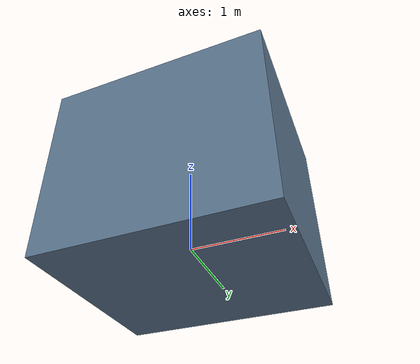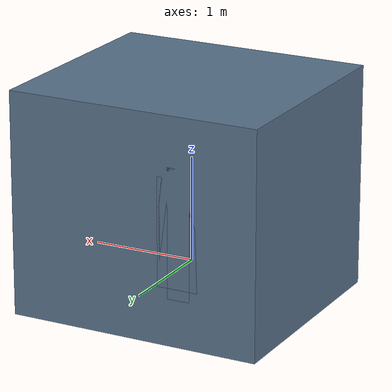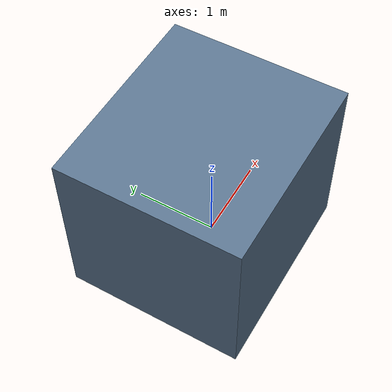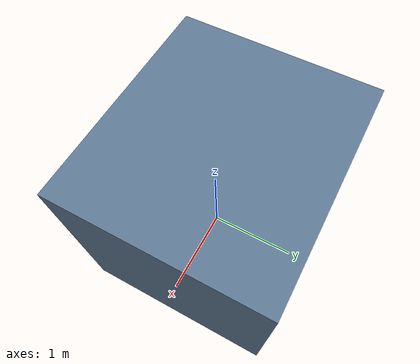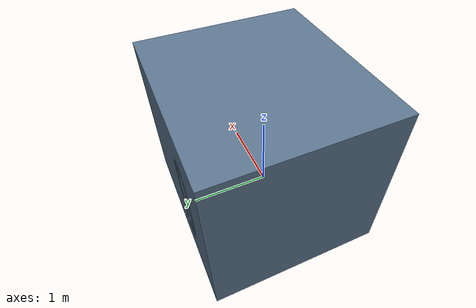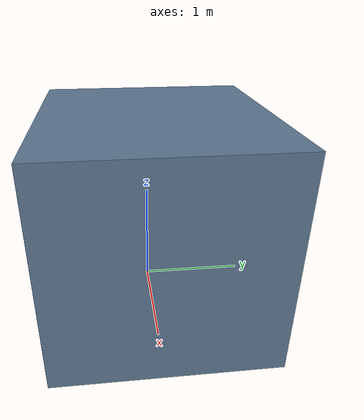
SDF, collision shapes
<?xml version="1.0"?>
<sdf version="1.6">
  <model name="airport_container_measured">
    <static>true</static>
    <link name="container_link">
      <pose>0 0 0 0 0 0</pose>
      <visual name="visual">
        <geometry>
          <mesh>
            <uri>model://airport_container_measured/meshes/container_visual.stl</uri>
            <scale>1 1 1</scale>
          </mesh>
        </geometry>
        <material>
          <ambient>0.25 0.35 0.45 1</ambient>
          <diffuse>0.35 0.45 0.55 1</diffuse>
        </material>
      </visual>
      <collision name="collision_0_body_main">
        <pose>-0.016949991505991857 0.08259390630376129 0.7202500000000001 0 0 0</pose>
        <geometry><box><size>2.432714285714286 2.1870000000000003 2.1245000000000003</size></box></geometry>
      </collision>
      <collision name="collision_1_lintel">
        <pose>-0.4851984387109607 1.1460939063037614 1.267217391304348 0 0 0</pose>
        <geometry><box><size>0.215695652173913 0.06 0.1</size></box></geometry>
      </collision>
      <collision name="collision_2_sill">
        <pose>-0.4851984387109607 1.1460939063037614 0.1537826086956522 0 0 0</pose>
        <geometry><box><size>0.215695652173913 0.06 0.1</size></box></geometry>
      </collision>
      <collision name="collision_3_left_pillar">
        <pose>-0.6430462647979173 1.1460939063037614 0.7105000000000001 0 0 0</pose>
        <geometry><box><size>0.1 0.06 1.0134347826086958</size></box></geometry>
      </collision>
      <collision name="collision_4_right_pillar">
        <pose>-0.3273506126240042 1.1460939063037614 0.7105000000000001 0 0 0</pose>
        <geometry><box><size>0.1 0.06 1.0134347826086958</size></box></geometry>
      </collision>
      <collision name="collision_5_leg_front_left">
        <pose>-0.9396671343631349 -0.7484660936962388 0.06 0 0 0</pose>
        <geometry><box><size>0.12 0.12 0.12</size></box></geometry>
      </collision>
      <collision name="collision_6_leg_front_right">
        <pose>0.9390528656368655 -0.7484660936962388 0.06 0 0 0</pose>
        <geometry><box><size>0.12 0.12 0.12</size></box></geometry>
      </collision>
      <collision name="collision_7_leg_back_left">
        <pose>-0.9396671343631349 0.9136539063037614 0.06 0 0 0</pose>
        <geometry><box><size>0.12 0.12 0.12</size></box></geometry>
      </collision>
      <collision name="collision_8_leg_back_right">
        <pose>0.9390528656368655 0.9136539063037614 0.06 0 0 0</pose>
        <geometry><box><size>0.12 0.12 0.12</size></box></geometry>
      </collision>
    </link>
  </model>
</sdf>
